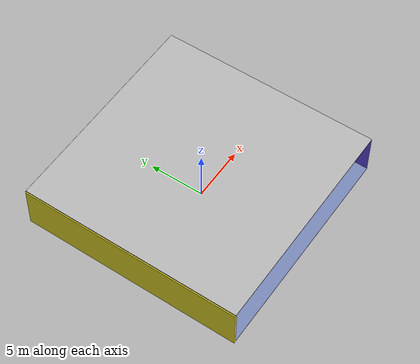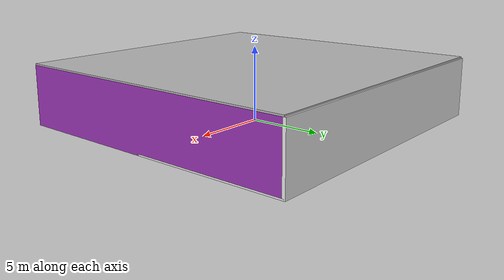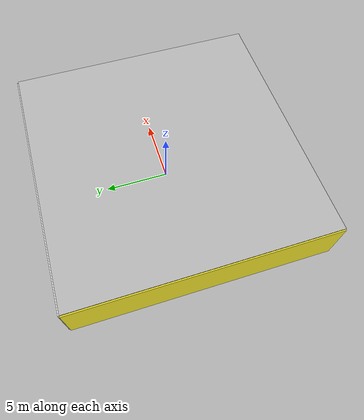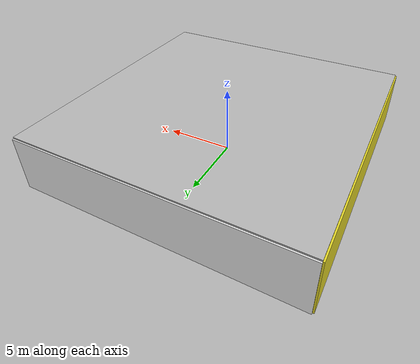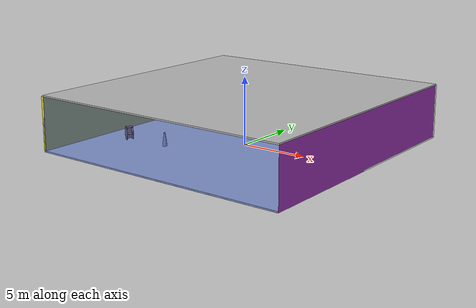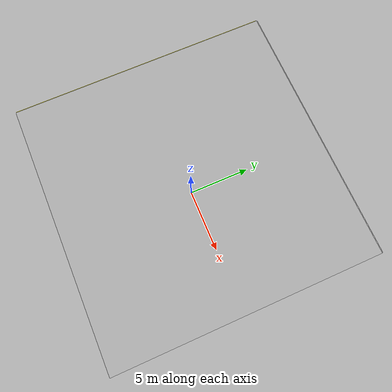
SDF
<sdf version="1.4">
 <world name="default">
  <physics type="ode">
   <max_step_size>0.001</max_step_size>
   <real_time_factor>1</real_time_factor>
   <real_time_update_rate>1000</real_time_update_rate>
   <gravity>0 0 -9.8</gravity>
  </physics>
  <scene><ambient>0.4 0.4 0.4 1</ambient><background>0.7 0.7 0.7 1</background><shadows>1</shadows></scene>
  <model name="Surrounding">
   <static>1</static>
   <link name="Ceiling">
    <collision name="Ceiling_Collision"><geometry><box><size>20 20 0.1</size></box></geometry></collision>
    <visual name="Ceiling_Visual">
     <geometry><box><size>20 20 0.1</size></box></geometry>
     <material>
      <script><uri>file://media/materials/scripts/gazebo.material</uri><name>Gazebo/LightOn</name></script>
     </material>
    </visual>
    <pose>0 0 4.05 0 0 0</pose>
   </link>
   <link name="Wall_South">
    <collision name="Wall_South_Collision">
     <geometry><box><size>20 0 4</size></box></geometry>
     <pose>0 0 2 0 -0 0</pose>
    </collision>
    <visual name="Wall_South_Visual">
     <pose>0 0 2 0 -0 0</pose>
     <geometry><box><size>20 0 4</size></box></geometry>
     <material>
      <script><uri>file://media/materials/scripts/gazebo.material</uri><name>Gazebo/BlueTransparent</name></script>
     </material>
    </visual>
    <velocity_decay><linear>0</linear><angular>0</angular></velocity_decay>
    <pose>0 -10 0 0 -0 0</pose>
   </link>
   <link name="Wall_East">
    <collision name="Wall_21_Collision">
     <geometry><box><size>20 0 4</size></box></geometry>
     <pose>0 0 2 0 -0 0</pose>
    </collision>
    <visual name="Wall_21_Visual">
     <pose>0 0 2 0 -0 0</pose>
     <geometry><box><size>20 0 4</size></box></geometry>
     <material>
      <script><uri>file://media/materials/scripts/gazebo.material</uri><name>Gazebo/Purple</name></script>
     </material>
    </visual>
    <velocity_decay><linear>0</linear><angular>0</angular></velocity_decay>
    <pose>10 0 0 0 -0 1.5708</pose>
   </link>
   <link name="Wall_North">
    <collision name="Wall_22_Collision">
     <geometry><box><size>20 0.2 4</size></box></geometry>
     <pose>0 0 2 0 -0 0</pose>
    </collision>
    <visual name="Wall_22_Visual">
     <pose>0 0 2 0 -0 0</pose>
     <geometry><box><size>20 0.2 4</size></box></geometry>
     <material>
      <script><uri>file://media/materials/scripts/gazebo.material</uri><name>Gazebo/White</name></script>
     </material>
    </visual>
    <velocity_decay><linear>0</linear><angular>0</angular></velocity_decay>
    <pose>0 10 0 0 -0 0</pose>
   </link>
   <link name="Wall_West">
    <collision name="Wall_23_Collision">
     <geometry><box><size>20 0.2 4</size></box></geometry>
     <pose>0 0 2 0 -0 0</pose>
    </collision>
    <visual name="Wall_23_Visual">
     <pose>0 0 2 0 -0 0</pose>
     <geometry><box><size>20 0.2 4</size></box></geometry>
     <material>
      <script><uri>file://media/materials/scripts/gazebo.material</uri><name>Gazebo/YellowGlow</name></script>
     </material>
    </visual>
    <velocity_decay><linear>0</linear><angular>0</angular></velocity_decay>
    <pose>-10 0 0 0 0 -1.5708</pose>
   </link>
   <link name="Ground_link">
    <collision name="collision">
     <pose>0 0 .05 0 -0 0</pose>
     <geometry><box><size>20 20 0.1</size></box></geometry>
    </collision>
    <visual name="visual">
     <pose>0 0 .05 0 -0 0</pose>
     <geometry><box><size>20 20 0.1</size></box></geometry>
     <material>
      <script><uri>file://media/materials/scripts/gazebo.material</uri><name>Gazebo/White</name></script>
     </material>
    </visual>
   </link>
   <static>1</static>
  </model>
  <spherical_coordinates>
   <surface_model>EARTH_WGS84</surface_model>
   <latitude_deg>0</latitude_deg>
   <longitude_deg>0</longitude_deg>
   <elevation>0</elevation>
   <heading_deg>0</heading_deg>
  </spherical_coordinates>
  <light name="lightball_0" type="diffuse">
   <diffuse>0.8 0.8 0.8 1</diffuse>
   <specular>0.2 0.2 0.2 1</specular>
   <attenuation>
    <range>100</range>
    <constant>0.7</constant>
    <linear>0.01</linear>
    <quadratic>0.001</quadratic>
   </attenuation>
   <direction>-0.5 0.1 -0.9</direction>
   <pose>-8.57917103846 3.16496928525 2.93415602187 0 0 0</pose>
  </light>
  <light name="lightball_1" type="diffuse">
   <diffuse>0.8 0.8 0.8 1</diffuse>
   <specular>0.2 0.2 0.2 1</specular>
   <attenuation>
    <range>100</range>
    <constant>0.7</constant>
    <linear>0.01</linear>
    <quadratic>0.001</quadratic>
   </attenuation>
   <direction>-0.5 0.1 -0.9</direction>
   <pose>2.35993799894 -5.20179232187 1.82118229361 0 0 0</pose>
  </light>
  <light name="lightball_2" type="diffuse">
   <diffuse>0.8 0.8 0.8 1</diffuse>
   <specular>0.2 0.2 0.2 1</specular>
   <attenuation>
    <range>100</range>
    <constant>0.7</constant>
    <linear>0.01</linear>
    <quadratic>0.001</quadratic>
   </attenuation>
   <direction>-0.5 0.1 -0.9</direction>
   <pose>-9.70531087365 -3.78163375743 1.47565172138 0 0 0</pose>
  </light>
  <light name="lightball_3" type="diffuse">
   <diffuse>0.8 0.8 0.8 1</diffuse>
   <specular>0.2 0.2 0.2 1</specular>
   <attenuation>
    <range>100</range>
    <constant>0.7</constant>
    <linear>0.01</linear>
    <quadratic>0.001</quadratic>
   </attenuation>
   <direction>-0.5 0.1 -0.9</direction>
   <pose>-1.05778223429 4.67469587436 1.71512685953 0 0 0</pose>
  </light>
  <light name="lightball_4" type="diffuse">
   <diffuse>0.8 0.8 0.8 1</diffuse>
   <specular>0.2 0.2 0.2 1</specular>
   <attenuation>
    <range>100</range>
    <constant>0.7</constant>
    <linear>0.01</linear>
    <quadratic>0.001</quadratic>
   </attenuation>
   <direction>-0.5 0.1 -0.9</direction>
   <pose>-3.73122920434 0.996560315271 2.56680546382 0 0 0</pose>
  </light>
  <light name="lightball_5" type="diffuse">
   <diffuse>0.8 0.8 0.8 1</diffuse>
   <specular>0.2 0.2 0.2 1</specular>
   <attenuation>
    <range>100</range>
    <constant>0.7</constant>
    <linear>0.01</linear>
    <quadratic>0.001</quadratic>
   </attenuation>
   <direction>-0.5 0.1 -0.9</direction>
   <pose>8.23469999721 5.12803580459 1.24272352676 0 0 0</pose>
  </light>
  <light name="lightball_6" type="diffuse">
   <diffuse>0.8 0.8 0.8 1</diffuse>
   <specular>0.2 0.2 0.2 1</specular>
   <attenuation>
    <range>100</range>
    <constant>0.7</constant>
    <linear>0.01</linear>
    <quadratic>0.001</quadratic>
   </attenuation>
   <direction>-0.5 0.1 -0.9</direction>
   <pose>-8.86739886367 8.36879241132 3.26793883031 0 0 0</pose>
  </light>
  <light name="lightball_7" type="diffuse">
   <diffuse>0.8 0.8 0.8 1</diffuse>
   <specular>0.2 0.2 0.2 1</specular>
   <attenuation>
    <range>100</range>
    <constant>0.7</constant>
    <linear>0.01</linear>
    <quadratic>0.001</quadratic>
   </attenuation>
   <direction>-0.5 0.1 -0.9</direction>
   <pose>0.283371143846 1.14266222724 3.13411710128 0 0 0</pose>
  </light>
  <light name="lightball_8" type="diffuse">
   <diffuse>0.8 0.8 0.8 1</diffuse>
   <specular>0.2 0.2 0.2 1</specular>
   <attenuation>
    <range>100</range>
    <constant>0.7</constant>
    <linear>0.01</linear>
    <quadratic>0.001</quadratic>
   </attenuation>
   <direction>-0.5 0.1 -0.9</direction>
   <pose>1.45457812841 8.91951410701 2.8363915415 0 0 0</pose>
  </light>
  <light name="lightball_9" type="diffuse">
   <diffuse>0.8 0.8 0.8 1</diffuse>
   <specular>0.2 0.2 0.2 1</specular>
   <attenuation>
    <range>100</range>
    <constant>0.7</constant>
    <linear>0.01</linear>
    <quadratic>0.001</quadratic>
   </attenuation>
   <direction>-0.5 0.1 -0.9</direction>
   <pose>-3.68498696717 9.5734312271 1.0923132391 0 0 0</pose>
  </light>
  <light name="lightball_10" type="diffuse">
   <diffuse>0.8 0.8 0.8 1</diffuse>
   <specular>0.2 0.2 0.2 1</specular>
   <attenuation>
    <range>100</range>
    <constant>0.7</constant>
    <linear>0.01</linear>
    <quadratic>0.001</quadratic>
   </attenuation>
   <direction>-0.5 0.1 -0.9</direction>
   <pose>8.85421541053 8.44304178385 3.03107690532 0 0 0</pose>
  </light>
  <light name="lightball_11" type="diffuse">
   <diffuse>0.8 0.8 0.8 1</diffuse>
   <specular>0.2 0.2 0.2 1</specular>
   <attenuation>
    <range>100</range>
    <constant>0.7</constant>
    <linear>0.01</linear>
    <quadratic>0.001</quadratic>
   </attenuation>
   <direction>-0.5 0.1 -0.9</direction>
   <pose>5.94441390801 0.656499751304 2.90069067751 0 0 0</pose>
  </light>
  <light name="lightball_12" type="diffuse">
   <diffuse>0.8 0.8 0.8 1</diffuse>
   <specular>0.2 0.2 0.2 1</specular>
   <attenuation>
    <range>100</range>
    <constant>0.7</constant>
    <linear>0.01</linear>
    <quadratic>0.001</quadratic>
   </attenuation>
   <direction>-0.5 0.1 -0.9</direction>
   <pose>-4.89308061718 5.91415209544 0.540245738909 0 0 0</pose>
  </light>
  <include><uri>model://cabinet</uri><pose>-7.52988086328 -4.17102625194 0 0 0 2.64743882694</pose></include>
  <include>
   <uri>model://construction_cone</uri>
   <pose>-4.19343804138 -3.97183749485 0 0 0 1.956288206</pose>
  </include>
  <include>
   <uri>model://textured_shapes</uri>
   <pose>-4.94181048766 3.7478777527 0 0 0 0.720615671315</pose>
  </include>
 </world>
</sdf>

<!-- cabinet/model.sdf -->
<sdf version="1.5">
  <model name="cabinet">
    <static>true</static>
    <link name="cabinet_bottom_plate">
      <inertial>
        <pose>0 0 -1 0 0 0</pose>
        <inertia>
          <ixx>2.050000</ixx>
          <ixy>0</ixy>
          <ixz>0</ixz>
          <iyy>2.050000</iyy>
          <iyz>0</iyz>
          <izz>2.050000</izz>
        </inertia>
        <mass>25.000000</mass>
      </inertial>
      <collision name="cabinet_bottom_plate_geom">
        <pose>0 0 0.010000 0 0 0</pose>
        <geometry>
          <box>
            <size>0.450000 0.450000 0.020000</size>
          </box>
        </geometry>
      </collision>
      <visual name="cabinet_bottom_plate_geom_visual">
        <pose>0 0 0.010000 0 0 0</pose>
        <geometry>
          <box>
            <size>0.450000 0.450000 0.020000</size>
          </box>
        </geometry>
        <material>
          <script>
            <uri>model://media/materials/scripts/gazebo.material</uri>
            <name>Gazebo/Wood</name>
          </script>
        </material>
      </visual>
      <collision name="cabinet_bottom_plate_geom_cabinet_back_plate">
        <pose>0.235000 0 0.510000 0 0 0</pose>
        <geometry>
          <box>
            <size>0.020000 0.450000 1.020000</size>
          </box>
        </geometry>
      </collision>
      <visual name="cabinet_bottom_plate_geom_cabinet_back_plate_visual">
        <pose>0.235000 0 0.510000 0 0 0</pose>
        <geometry>
          <box>
            <size>0.020000 0.450000 1.020000</size>
          </box>
        </geometry>
        <material>
          <script>
            <uri>model://media/materials/scripts/gazebo.material</uri>
            <name>Gazebo/Wood</name>
          </script>
        </material>
      </visual>
      <collision name="cabinet_bottom_plate_geom_cabinet_left_plate">
        <pose>0 0.235000 0.510000 0 0 0</pose>
        <geometry>
          <box>
            <size>0.450000 0.020000 1.020000</size>
          </box>
        </geometry>
      </collision>
      <visual name="cabinet_bottom_plate_geom_cabinet_left_plate_visual">
        <pose>0 0.235000 0.510000 0 0 0</pose>
        <geometry>
          <box>
            <size>0.450000 0.020000 1.020000</size>
          </box>
        </geometry>
        <material>
          <script>
            <uri>model://media/materials/scripts/gazebo.material</uri>
            <name>Gazebo/Wood</name>
          </script>
        </material>
      </visual>
      <collision name="cabinet_bottom_plate_geom_cabinet_middle_plate">
        <pose>0 0 0.510000 0 0 0</pose>
        <geometry>
          <box>
            <size>0.450000 0.450000 0.020000</size>
          </box>
        </geometry>
      </collision>
      <visual name="cabinet_bottom_plate_geom_cabinet_middle_plate_visual">
        <pose>0 0 0.510000 0 0 0</pose>
        <geometry>
          <box>
            <size>0.450000 0.450000 0.020000</size>
          </box>
        </geometry>
        <material>
          <script>
            <uri>model://media/materials/scripts/gazebo.material</uri>
            <name>Gazebo/Wood</name>
          </script>
        </material>
      </visual>
      <collision name="cabinet_bottom_plate_geom_cabinet_right_plate">
        <pose>0 -0.235000 0.510000 0 0 0</pose>
        <geometry>
          <box>
            <size>0.450000 0.020000 1.020000</size>
          </box>
        </geometry>
      </collision>
      <visual name="cabinet_bottom_plate_geom_cabinet_right_plate_visual">
        <pose>0 -0.235000 0.510000 0 0 0</pose>
        <geometry>
          <box>
            <size>0.450000 0.020000 1.020000</size>
          </box>
        </geometry>
        <material>
          <script>
            <uri>model://media/materials/scripts/gazebo.material</uri>
            <name>Gazebo/Wood</name>
          </script>
        </material>
      </visual>
      <collision name="cabinet_bottom_plate_geom_cabinet_top_plate">
        <pose>0 0 1.010000 0 0 0</pose>
        <geometry>
          <box>
            <size>0.450000 0.450000 0.020000</size>
          </box>
        </geometry>
      </collision>
      <visual name="cabinet_bottom_plate_geom_cabinet_top_plate_visual">
        <pose>0 0 1.010000 0 0 0</pose>
        <geometry>
          <box>
            <size>0.450000 0.450000 0.020000</size>
          </box>
        </geometry>
        <material>
          <script>
            <uri>model://media/materials/scripts/gazebo.material</uri>
            <name>Gazebo/Wood</name>
          </script>
        </material>
      </visual>
    </link>
  </model>
</sdf>

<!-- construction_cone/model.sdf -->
<sdf version="1.5">
  <model name="Construction Cone">
    <link name="link">
      <collision name="collision">
        <geometry>
          <mesh>
            <scale>10 10 10</scale>
            <uri>file://isr-testbed/construction_cone/meshes/construction_cone.dae</uri>
          </mesh>
        </geometry>
      </collision>
      <visual name="visual">
        <geometry>
          <mesh>
            <scale>10 10 10</scale>
            <uri>file://isr-testbed/construction_cone/meshes/construction_cone.dae</uri>
          </mesh>
        </geometry>
      </visual>
    </link>
  </model>
</sdf>

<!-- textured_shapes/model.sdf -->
<sdf version="1.6">
  <model name="textured_shapes">
    <pose>0 0 0.5 0 0 0</pose>
    <link name="box">
      <pose>0 -1.5 0 0 0 0</pose>
      <collision name="collision">
        <geometry>
          <box>
            <size>1 1 1</size>
          </box>
        </geometry>
      </collision>
      <visual name="visual">
        <geometry>
          <box>
            <size>1 1 1</size>
          </box>
        </geometry>
        <material>
          <script>
            <uri>model://../model_source/models/textured_shapes/materials/scripts</uri>
            <uri>model://../model_source/models/textured_shapes/materials/textures</uri>
            <name>TexturedShape/Squares</name>
          </script>
        </material>
      </visual>
    </link>
    <link name="sphere">
      <collision name="collision">
        <geometry>
          <sphere>
            <radius>0.5</radius>
          </sphere>
        </geometry>
      </collision>
      <visual name="visual">
        <geometry>
          <sphere>
            <radius>0.5</radius>
          </sphere>
        </geometry>
        <material>
          <script>
            <uri>model://../model_source/models/textured_shapes/materials/scripts</uri>
            <uri>model://../model_source/models/textured_shapes/materials/textures</uri>
            <name>TexturedShape/Squares</name>
          </script>
        </material>
      </visual>
    </link>
    <link name="cylinder">
      <pose>0 1.5 0 0 0 0</pose>
      <collision name="collision">
        <geometry>
          <cylinder>
            <radius>0.5</radius>
            <length>1</length>
          </cylinder>
        </geometry>
      </collision>
      <visual name="visual">
        <geometry>
          <cylinder>
            <radius>0.5</radius>
            <length>1</length>
          </cylinder>
        </geometry>
        <material>
          <script>
            <uri>model://../model_source/models/textured_shapes/materials/scripts</uri>
            <uri>model://../model_source/models/textured_shapes/materials/textures</uri>
            <name>TexturedShape/Squares</name>
          </script>
        </material>
      </visual>
    </link>
  </model>
</sdf>
